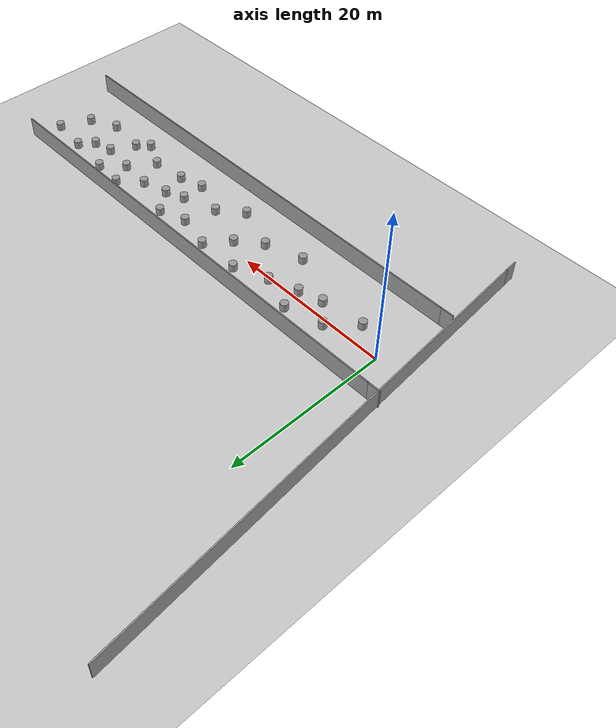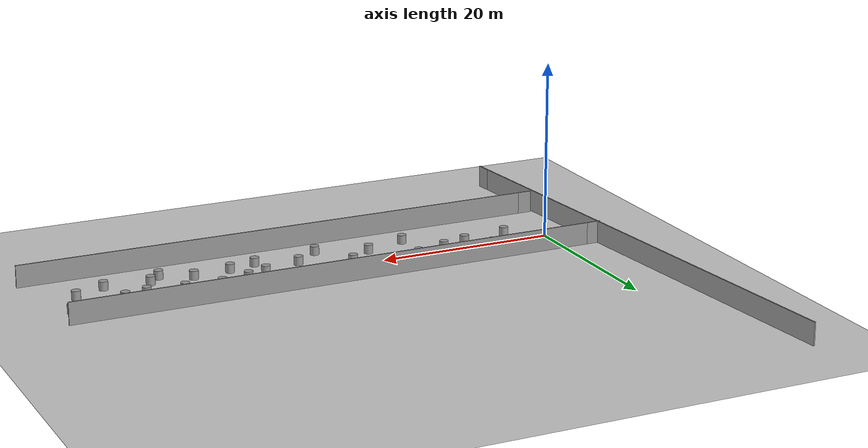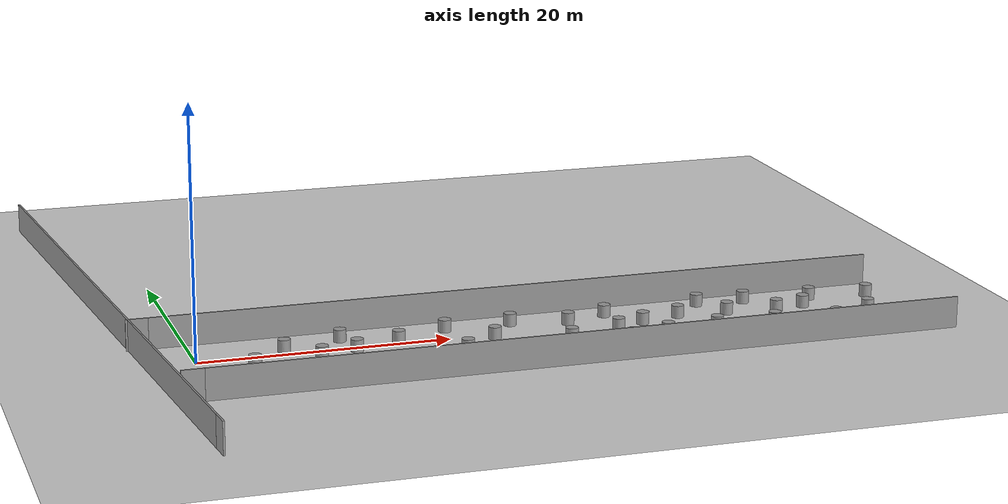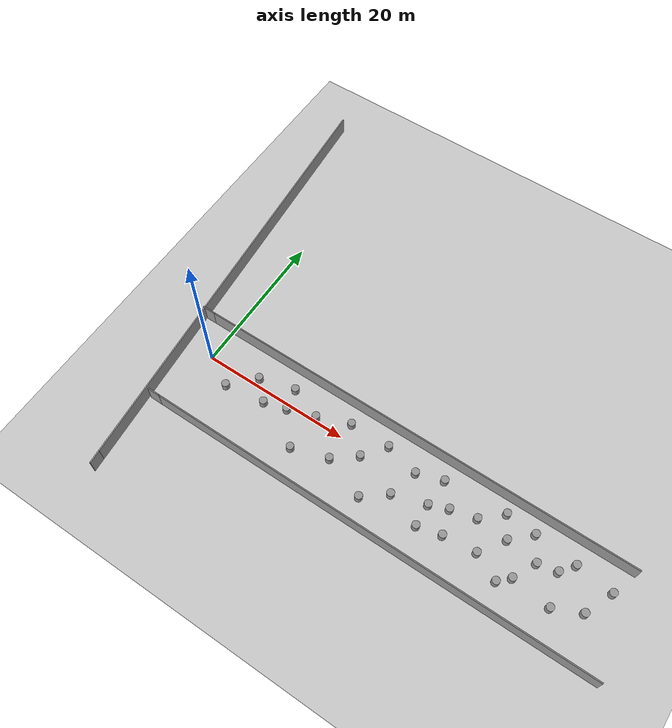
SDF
<sdf version="1.6">
 <world name="default">
  <light name="sun" type="directional">
   <pose>0 0 10 0 -0 0</pose>
   <diffuse>0.8 0.8 0.8 1</diffuse>
   <specular>0.2 0.2 0.2 1</specular>
   <attenuation>
    <range>1000</range>
    <constant>0.9</constant>
    <linear>0.01</linear>
    <quadratic>0.001</quadratic>
   </attenuation>
   <direction>-0.5 0.1 -0.9</direction>
  </light>
  <model name="ground_plane">
   <static>1</static>
   <link name="link">
    <collision name="collision">
     <geometry><plane><normal>0 0 1</normal><size>100 100</size></plane></geometry>
     <surface>
      <contact><collide_bitmask>65535</collide_bitmask></contact>
      <friction><ode><mu>100</mu><mu2>50</mu2></ode></friction>
     </surface>
    </collision>
    <visual name="visual">
     <cast_shadows>0</cast_shadows>
     <geometry><plane><normal>0 0 1</normal><size>100 100</size></plane></geometry>
     <material>
      <script><uri>file://media/materials/scripts/gazebo.material</uri><name>Gazebo/Grey</name></script>
     </material>
    </visual>
   </link>
  </model>
  <gravity>0 0 -9.8</gravity>
  <magnetic_field>6e-06 2.3e-05 -4.2e-05</magnetic_field>
  <atmosphere type="adiabatic"/>
  <physics name="default_physics" default="0" type="ode">
   <max_step_size>0.001</max_step_size>
   <real_time_factor>1</real_time_factor>
   <real_time_update_rate>1000</real_time_update_rate>
  </physics>
  <scene><ambient>0.4 0.4 0.4 1</ambient><background>0.7 0.7 0.7 1</background><shadows>1</shadows></scene>
  <audio><device>default</device></audio>
  <spherical_coordinates>
   <surface_model>EARTH_WGS84</surface_model>
   <latitude_deg>0</latitude_deg>
   <longitude_deg>0</longitude_deg>
   <elevation>0</elevation>
   <heading_deg>0</heading_deg>
  </spherical_coordinates>
  <model name="unit_cylinder">
   <pose>6.99929 0.832206 0.499998 3e-06 -2e-06 0</pose>
   <link name="link">
    <inertial>
     <mass>1</mass>
     <inertia><ixx>0.145833</ixx><ixy>0</ixy><ixz>0</ixz><iyy>0.145833</iyy><iyz>0</iyz><izz>0.125</izz></inertia>
    </inertial>
    <collision name="collision">
     <geometry><cylinder><radius>0.5</radius><length>1</length></cylinder></geometry>
    </collision>
    <visual name="visual">
     <geometry><cylinder><radius>0.5</radius><length>1</length></cylinder></geometry>
     <material>
      <script><name>Gazebo/Grey</name><uri>file://media/materials/scripts/gazebo.material</uri></script>
     </material>
    </visual>
   </link>
  </model>
  <model name="unit_cylinder_0">
   <pose>4.06146 -2.25804 0.499992 -3e-06 2e-06 0</pose>
   <link name="link">
    <inertial>
     <mass>1</mass>
     <inertia><ixx>0.145833</ixx><ixy>0</ixy><ixz>0</ixz><iyy>0.145833</iyy><iyz>0</iyz><izz>0.125</izz></inertia>
    </inertial>
    <collision name="collision">
     <geometry><cylinder><radius>0.5</radius><length>1</length></cylinder></geometry>
    </collision>
    <visual name="visual">
     <geometry><cylinder><radius>0.5</radius><length>1</length></cylinder></geometry>
     <material>
      <script><name>Gazebo/Grey</name><uri>file://media/materials/scripts/gazebo.material</uri></script>
     </material>
    </visual>
   </link>
  </model>
  <model name="unit_cylinder_1">
   <pose>11.6938 2.06939 0.499992 -3e-06 2e-06 0</pose>
   <link name="link">
    <inertial>
     <mass>1</mass>
     <inertia><ixx>0.145833</ixx><ixy>0</ixy><ixz>0</ixz><iyy>0.145833</iyy><iyz>0</iyz><izz>0.125</izz></inertia>
    </inertial>
    <collision name="collision">
     <geometry><cylinder><radius>0.5</radius><length>1</length></cylinder></geometry>
    </collision>
    <visual name="visual">
     <geometry><cylinder><radius>0.5</radius><length>1</length></cylinder></geometry>
     <material>
      <script><name>Gazebo/Grey</name><uri>file://media/materials/scripts/gazebo.material</uri></script>
     </material>
    </visual>
   </link>
  </model>
  <model name="unit_cylinder_2">
   <pose>9.38691 -1.54603 0.499992 -3e-06 2e-06 0</pose>
   <link name="link">
    <inertial>
     <mass>1</mass>
     <inertia><ixx>0.145833</ixx><ixy>0</ixy><ixz>0</ixz><iyy>0.145833</iyy><iyz>0</iyz><izz>0.125</izz></inertia>
    </inertial>
    <collision name="collision">
     <geometry><cylinder><radius>0.5</radius><length>1</length></cylinder></geometry>
    </collision>
    <visual name="visual">
     <geometry><cylinder><radius>0.5</radius><length>1</length></cylinder></geometry>
     <material>
      <script><name>Gazebo/Grey</name><uri>file://media/materials/scripts/gazebo.material</uri></script>
     </material>
    </visual>
   </link>
  </model>
  <model name="unit_cylinder_3">
   <pose>15.6885 -4.63383 0.499992 -3e-06 2e-06 0</pose>
   <link name="link">
    <inertial>
     <mass>1</mass>
     <inertia><ixx>0.145833</ixx><ixy>0</ixy><ixz>0</ixz><iyy>0.145833</iyy><iyz>0</iyz><izz>0.125</izz></inertia>
    </inertial>
    <collision name="collision">
     <geometry><cylinder><radius>0.5</radius><length>1</length></cylinder></geometry>
    </collision>
    <visual name="visual">
     <geometry><cylinder><radius>0.5</radius><length>1</length></cylinder></geometry>
     <material>
      <script><name>Gazebo/Grey</name><uri>file://media/materials/scripts/gazebo.material</uri></script>
     </material>
    </visual>
   </link>
  </model>
  <model name="unit_cylinder_4">
   <pose>15.969 0.43538 0.499992 -3e-06 2e-06 0</pose>
   <link name="link">
    <inertial>
     <mass>1</mass>
     <inertia><ixx>0.145833</ixx><ixy>0</ixy><ixz>0</ixz><iyy>0.145833</iyy><iyz>0</iyz><izz>0.125</izz></inertia>
    </inertial>
    <collision name="collision">
     <geometry><cylinder><radius>0.5</radius><length>1</length></cylinder></geometry>
    </collision>
    <visual name="visual">
     <geometry><cylinder><radius>0.5</radius><length>1</length></cylinder></geometry>
     <material>
      <script><name>Gazebo/Grey</name><uri>file://media/materials/scripts/gazebo.material</uri></script>
     </material>
    </visual>
   </link>
  </model>
  <model name="unit_cylinder_5">
   <pose>20.1456 2.07583 0.499997 3e-06 2e-06 0</pose>
   <link name="link">
    <inertial>
     <mass>1</mass>
     <inertia><ixx>0.145833</ixx><ixy>0</ixy><ixz>0</ixz><iyy>0.145833</iyy><iyz>0</iyz><izz>0.125</izz></inertia>
    </inertial>
    <collision name="collision">
     <geometry><cylinder><radius>0.5</radius><length>1</length></cylinder></geometry>
    </collision>
    <visual name="visual">
     <geometry><cylinder><radius>0.5</radius><length>1</length></cylinder></geometry>
     <material>
      <script><name>Gazebo/Grey</name><uri>file://media/materials/scripts/gazebo.material</uri></script>
     </material>
    </visual>
   </link>
  </model>
  <model name="unit_cylinder_6">
   <pose>20.4307 -3.17791 0.499998 3e-06 -2e-06 0</pose>
   <link name="link">
    <inertial>
     <mass>1</mass>
     <inertia><ixx>0.145833</ixx><ixy>0</ixy><ixz>0</ixz><iyy>0.145833</iyy><iyz>0</iyz><izz>0.125</izz></inertia>
    </inertial>
    <collision name="collision">
     <geometry><cylinder><radius>0.5</radius><length>1</length></cylinder></geometry>
    </collision>
    <visual name="visual">
     <geometry><cylinder><radius>0.5</radius><length>1</length></cylinder></geometry>
     <material>
      <script><name>Gazebo/Grey</name><uri>file://media/materials/scripts/gazebo.material</uri></script>
     </material>
    </visual>
   </link>
  </model>
  <model name="unit_cylinder_7">
   <pose>25.5153 2.11295 0.499998 3e-06 -2e-06 0</pose>
   <link name="link">
    <inertial>
     <mass>1</mass>
     <inertia><ixx>0.145833</ixx><ixy>0</ixy><ixz>0</ixz><iyy>0.145833</iyy><iyz>0</iyz><izz>0.125</izz></inertia>
    </inertial>
    <collision name="collision">
     <geometry><cylinder><radius>0.5</radius><length>1</length></cylinder></geometry>
    </collision>
    <visual name="visual">
     <geometry><cylinder><radius>0.5</radius><length>1</length></cylinder></geometry>
     <material>
      <script><name>Gazebo/Grey</name><uri>file://media/materials/scripts/gazebo.material</uri></script>
     </material>
    </visual>
   </link>
  </model>
  <model name="unit_cylinder_8">
   <pose>26.0064 -5.24581 0.499997 3e-06 2e-06 0</pose>
   <link name="link">
    <inertial>
     <mass>1</mass>
     <inertia><ixx>0.145833</ixx><ixy>0</ixy><ixz>0</ixz><iyy>0.145833</iyy><iyz>0</iyz><izz>0.125</izz></inertia>
    </inertial>
    <collision name="collision">
     <geometry><cylinder><radius>0.5</radius><length>1</length></cylinder></geometry>
    </collision>
    <visual name="visual">
     <geometry><cylinder><radius>0.5</radius><length>1</length></cylinder></geometry>
     <material>
      <script><name>Gazebo/Grey</name><uri>file://media/materials/scripts/gazebo.material</uri></script>
     </material>
    </visual>
   </link>
  </model>
  <model name="wall_up02">
   <pose>26.3188 4.46212 0 0 -0 0</pose>
   <link name="Wall_0">
    <collision name="Wall_0_Collision">
     <geometry><box><size>60 0.15 2.5</size></box></geometry>
     <pose>0 0 1.25 0 -0 0</pose>
    </collision>
    <visual name="Wall_0_Visual">
     <pose>0 0 1.25 0 -0 0</pose>
     <geometry><box><size>60 0.15 2.5</size></box></geometry>
     <material>
      <script><uri>file://media/materials/scripts/gazebo.material</uri><name>Gazebo/Grey</name></script>
      <ambient>1 1 1 1</ambient>
     </material>
     <meta><layer>0</layer></meta>
    </visual>
    <pose>0.799999 0 0 0 -0 3.14159</pose>
   </link>
   <link name="Wall_1">
    <collision name="Wall_1_Collision">
     <geometry><box><size>1.75 0.15 2.5</size></box></geometry>
     <pose>0 0 1.25 0 -0 0</pose>
    </collision>
    <visual name="Wall_1_Visual">
     <pose>0 0 1.25 0 -0 0</pose>
     <geometry><box><size>1.75 0.15 2.5</size></box></geometry>
     <material>
      <script><uri>file://media/materials/scripts/gazebo.material</uri><name>Gazebo/Grey</name></script>
      <ambient>0 0 0 1</ambient>
     </material>
     <meta><layer>0</layer></meta>
    </visual>
    <pose>-29.925 0 0 0 -0 3.14159</pose>
   </link>
   <static>1</static>
  </model>
  <model name="wall_up02_clone">
   <pose>28.0229 -8.63842 0 0 -0 0</pose>
   <link name="Wall_0">
    <collision name="Wall_0_Collision">
     <geometry><box><size>60 0.15 2.5</size></box></geometry>
     <pose>0 0 1.25 0 -0 0</pose>
    </collision>
    <visual name="Wall_0_Visual">
     <pose>0 0 1.25 0 -0 0</pose>
     <geometry><box><size>60 0.15 2.5</size></box></geometry>
     <material>
      <script><uri>file://media/materials/scripts/gazebo.material</uri><name>Gazebo/Grey</name></script>
      <ambient>1 1 1 1</ambient>
     </material>
     <meta><layer>0</layer></meta>
    </visual>
    <pose>0.799999 0 0 0 -0 3.14159</pose>
   </link>
   <link name="Wall_1">
    <collision name="Wall_1_Collision">
     <geometry><box><size>1.75 0.15 2.5</size></box></geometry>
     <pose>0 0 1.25 0 -0 0</pose>
    </collision>
    <visual name="Wall_1_Visual">
     <pose>0 0 1.25 0 -0 0</pose>
     <geometry><box><size>1.75 0.15 2.5</size></box></geometry>
     <material>
      <script><uri>file://media/materials/scripts/gazebo.material</uri><name>Gazebo/Grey</name></script>
      <ambient>0 0 0 1</ambient>
     </material>
     <meta><layer>0</layer></meta>
    </visual>
    <pose>-29.925 0 0 0 -0 3.14159</pose>
   </link>
   <static>1</static>
  </model>
  <model name="wall_up02_clone_0">
   <pose>-4.8199 10.6285 0 0 -0 1.65999</pose>
   <link name="Wall_0">
    <collision name="Wall_0_Collision">
     <geometry><box><size>60 0.15 2.5</size></box></geometry>
     <pose>0 0 1.25 0 -0 0</pose>
    </collision>
    <visual name="Wall_0_Visual">
     <pose>0 0 1.25 0 -0 0</pose>
     <geometry><box><size>60 0.15 2.5</size></box></geometry>
     <material>
      <script><uri>file://media/materials/scripts/gazebo.material</uri><name>Gazebo/Grey</name></script>
      <ambient>1 1 1 1</ambient>
     </material>
     <meta><layer>0</layer></meta>
    </visual>
    <pose>0.799999 0 0 0 -0 3.14159</pose>
   </link>
   <link name="Wall_1">
    <collision name="Wall_1_Collision">
     <geometry><box><size>1.75 0.15 2.5</size></box></geometry>
     <pose>0 0 1.25 0 -0 0</pose>
    </collision>
    <visual name="Wall_1_Visual">
     <pose>0 0 1.25 0 -0 0</pose>
     <geometry><box><size>1.75 0.15 2.5</size></box></geometry>
     <material>
      <script><uri>file://media/materials/scripts/gazebo.material</uri><name>Gazebo/Grey</name></script>
      <ambient>0 0 0 1</ambient>
     </material>
     <meta><layer>0</layer></meta>
    </visual>
    <pose>-29.925 0 0 0 -0 3.14159</pose>
   </link>
   <static>1</static>
  </model>
  <model name="unit_cylinder_9">
   <pose>29.9752 1.02368 0.499998 3e-06 -3e-06 0</pose>
   <link name="link">
    <inertial>
     <mass>1</mass>
     <inertia><ixx>0.145833</ixx><ixy>0</ixy><ixz>0</ixz><iyy>0.145833</iyy><iyz>0</iyz><izz>0.125</izz></inertia>
    </inertial>
    <collision name="collision">
     <geometry><cylinder><radius>0.5</radius><length>1</length></cylinder></geometry>
    </collision>
    <visual name="visual">
     <geometry><cylinder><radius>0.5</radius><length>1</length></cylinder></geometry>
     <material>
      <script><name>Gazebo/Grey</name><uri>file://media/materials/scripts/gazebo.material</uri></script>
     </material>
    </visual>
   </link>
  </model>
  <model name="unit_cylinder_10">
   <pose>28.9403 -2.84074 0.499992 -3e-06 3e-06 0</pose>
   <link name="link">
    <inertial>
     <mass>1</mass>
     <inertia><ixx>0.145833</ixx><ixy>0</ixy><ixz>0</ixz><iyy>0.145833</iyy><iyz>0</iyz><izz>0.125</izz></inertia>
    </inertial>
    <collision name="collision">
     <geometry><cylinder><radius>0.5</radius><length>1</length></cylinder></geometry>
    </collision>
    <visual name="visual">
     <geometry><cylinder><radius>0.5</radius><length>1</length></cylinder></geometry>
     <material>
      <script><name>Gazebo/Grey</name><uri>file://media/materials/scripts/gazebo.material</uri></script>
     </material>
    </visual>
   </link>
  </model>
  <model name="unit_cylinder_11">
   <pose>38.9306 0.249724 0.499992 -3e-06 3e-06 0</pose>
   <link name="link">
    <inertial>
     <mass>1</mass>
     <inertia><ixx>0.145833</ixx><ixy>0</ixy><ixz>0</ixz><iyy>0.145833</iyy><iyz>0</iyz><izz>0.125</izz></inertia>
    </inertial>
    <collision name="collision">
     <geometry><cylinder><radius>0.5</radius><length>1</length></cylinder></geometry>
    </collision>
    <visual name="visual">
     <geometry><cylinder><radius>0.5</radius><length>1</length></cylinder></geometry>
     <material>
      <script><name>Gazebo/Grey</name><uri>file://media/materials/scripts/gazebo.material</uri></script>
     </material>
    </visual>
   </link>
  </model>
  <model name="unit_cylinder_12">
   <pose>23.3283 -0.82513 0.499998 3e-06 -3e-06 0</pose>
   <link name="link">
    <inertial>
     <mass>1</mass>
     <inertia><ixx>0.145833</ixx><ixy>0</ixy><ixz>0</ixz><iyy>0.145833</iyy><iyz>0</iyz><izz>0.125</izz></inertia>
    </inertial>
    <collision name="collision">
     <geometry><cylinder><radius>0.5</radius><length>1</length></cylinder></geometry>
    </collision>
    <visual name="visual">
     <geometry><cylinder><radius>0.5</radius><length>1</length></cylinder></geometry>
     <material>
      <script><name>Gazebo/Grey</name><uri>file://media/materials/scripts/gazebo.material</uri></script>
     </material>
    </visual>
   </link>
  </model>
  <model name="unit_cylinder_13">
   <pose>12.3468 -0.723971 0.499992 -3e-06 4e-06 0</pose>
   <link name="link">
    <inertial>
     <mass>1</mass>
     <inertia><ixx>0.145833</ixx><ixy>0</ixy><ixz>0</ixz><iyy>0.145833</iyy><iyz>0</iyz><izz>0.125</izz></inertia>
    </inertial>
    <collision name="collision">
     <geometry><cylinder><radius>0.5</radius><length>1</length></cylinder></geometry>
    </collision>
    <visual name="visual">
     <geometry><cylinder><radius>0.5</radius><length>1</length></cylinder></geometry>
     <material>
      <script><name>Gazebo/Grey</name><uri>file://media/materials/scripts/gazebo.material</uri></script>
     </material>
    </visual>
   </link>
  </model>
  <model name="unit_cylinder_14">
   <pose>33.4337 -4.49053 0.499992 -3e-06 4e-06 0</pose>
   <link name="link">
    <inertial>
     <mass>1</mass>
     <inertia><ixx>0.145833</ixx><ixy>0</ixy><ixz>0</ixz><iyy>0.145833</iyy><iyz>0</iyz><izz>0.125</izz></inertia>
    </inertial>
    <collision name="collision">
     <geometry><cylinder><radius>0.5</radius><length>1</length></cylinder></geometry>
    </collision>
    <visual name="visual">
     <geometry><cylinder><radius>0.5</radius><length>1</length></cylinder></geometry>
     <material>
      <script><name>Gazebo/Grey</name><uri>file://media/materials/scripts/gazebo.material</uri></script>
     </material>
    </visual>
   </link>
  </model>
  <model name="unit_cylinder_15">
   <pose>33.2811 -1.5191 0.499992 -3e-06 4e-06 0</pose>
   <link name="link">
    <inertial>
     <mass>1</mass>
     <inertia><ixx>0.145833</ixx><ixy>0</ixy><ixz>0</ixz><iyy>0.145833</iyy><iyz>0</iyz><izz>0.125</izz></inertia>
    </inertial>
    <collision name="collision">
     <geometry><cylinder><radius>0.5</radius><length>1</length></cylinder></geometry>
    </collision>
    <visual name="visual">
     <geometry><cylinder><radius>0.5</radius><length>1</length></cylinder></geometry>
     <material>
      <script><name>Gazebo/Grey</name><uri>file://media/materials/scripts/gazebo.material</uri></script>
     </material>
    </visual>
   </link>
  </model>
  <model name="unit_cylinder_16">
   <pose>33.3825 2.12177 0.499998 3e-06 -4e-06 0</pose>
   <link name="link">
    <inertial>
     <mass>1</mass>
     <inertia><ixx>0.145833</ixx><ixy>0</ixy><ixz>0</ixz><iyy>0.145833</iyy><iyz>0</iyz><izz>0.125</izz></inertia>
    </inertial>
    <collision name="collision">
     <geometry><cylinder><radius>0.5</radius><length>1</length></cylinder></geometry>
    </collision>
    <visual name="visual">
     <geometry><cylinder><radius>0.5</radius><length>1</length></cylinder></geometry>
     <material>
      <script><name>Gazebo/Grey</name><uri>file://media/materials/scripts/gazebo.material</uri></script>
     </material>
    </visual>
   </link>
  </model>
  <model name="unit_cylinder_17">
   <pose>35.6441 -0.588373 0.499998 3e-06 -4e-06 0</pose>
   <link name="link">
    <inertial>
     <mass>1</mass>
     <inertia><ixx>0.145833</ixx><ixy>0</ixy><ixz>0</ixz><iyy>0.145833</iyy><iyz>0</iyz><izz>0.125</izz></inertia>
    </inertial>
    <collision name="collision">
     <geometry><cylinder><radius>0.5</radius><length>1</length></cylinder></geometry>
    </collision>
    <visual name="visual">
     <geometry><cylinder><radius>0.5</radius><length>1</length></cylinder></geometry>
     <material>
      <script><name>Gazebo/Grey</name><uri>file://media/materials/scripts/gazebo.material</uri></script>
     </material>
    </visual>
   </link>
  </model>
  <model name="unit_cylinder_18">
   <pose>40.8577 -3.2866 0.499992 -3e-06 4e-06 0</pose>
   <link name="link">
    <inertial>
     <mass>1</mass>
     <inertia><ixx>0.145833</ixx><ixy>0</ixy><ixz>0</ixz><iyy>0.145833</iyy><iyz>0</iyz><izz>0.125</izz></inertia>
    </inertial>
    <collision name="collision">
     <geometry><cylinder><radius>0.5</radius><length>1</length></cylinder></geometry>
    </collision>
    <visual name="visual">
     <geometry><cylinder><radius>0.5</radius><length>1</length></cylinder></geometry>
     <material>
      <script><name>Gazebo/Grey</name><uri>file://media/materials/scripts/gazebo.material</uri></script>
     </material>
    </visual>
   </link>
  </model>
  <model name="unit_cylinder_19">
   <pose>41.4999 2.67103 0.499992 -3e-06 4e-06 0</pose>
   <link name="link">
    <inertial>
     <mass>1</mass>
     <inertia><ixx>0.145833</ixx><ixy>0</ixy><ixz>0</ixz><iyy>0.145833</iyy><iyz>0</iyz><izz>0.125</izz></inertia>
    </inertial>
    <collision name="collision">
     <geometry><cylinder><radius>0.5</radius><length>1</length></cylinder></geometry>
    </collision>
    <visual name="visual">
     <geometry><cylinder><radius>0.5</radius><length>1</length></cylinder></geometry>
     <material>
      <script><name>Gazebo/Grey</name><uri>file://media/materials/scripts/gazebo.material</uri></script>
     </material>
    </visual>
   </link>
  </model>
  <model name="unit_cylinder_20">
   <pose>42.9995 -0.081271 0.499998 3e-06 4e-06 -0</pose>
   <link name="link">
    <inertial>
     <mass>1</mass>
     <inertia><ixx>0.145833</ixx><ixy>0</ixy><ixz>0</ixz><iyy>0.145833</iyy><iyz>0</iyz><izz>0.125</izz></inertia>
    </inertial>
    <collision name="collision">
     <geometry><cylinder><radius>0.5</radius><length>1</length></cylinder></geometry>
    </collision>
    <visual name="visual">
     <geometry><cylinder><radius>0.5</radius><length>1</length></cylinder></geometry>
     <material>
      <script><name>Gazebo/Grey</name><uri>file://media/materials/scripts/gazebo.material</uri></script>
     </material>
    </visual>
   </link>
  </model>
  <model name="unit_cylinder_21">
   <pose>36.5585 -3.73062 0.499998 3e-06 4e-06 -0</pose>
   <link name="link">
    <inertial>
     <mass>1</mass>
     <inertia><ixx>0.145833</ixx><ixy>0</ixy><ixz>0</ixz><iyy>0.145833</iyy><iyz>0</iyz><izz>0.125</izz></inertia>
    </inertial>
    <collision name="collision">
     <geometry><cylinder><radius>0.5</radius><length>1</length></cylinder></geometry>
    </collision>
    <visual name="visual">
     <geometry><cylinder><radius>0.5</radius><length>1</length></cylinder></geometry>
     <material>
      <script><name>Gazebo/Grey</name><uri>file://media/materials/scripts/gazebo.material</uri></script>
     </material>
    </visual>
   </link>
  </model>
  <model name="unit_cylinder_22">
   <pose>44.2549 -4.96705 0.499997 3e-06 3e-06 0</pose>
   <link name="link">
    <inertial>
     <mass>1</mass>
     <inertia><ixx>0.145833</ixx><ixy>0</ixy><ixz>0</ixz><iyy>0.145833</iyy><iyz>0</iyz><izz>0.125</izz></inertia>
    </inertial>
    <collision name="collision">
     <geometry><cylinder><radius>0.5</radius><length>1</length></cylinder></geometry>
    </collision>
    <visual name="visual">
     <geometry><cylinder><radius>0.5</radius><length>1</length></cylinder></geometry>
     <material>
      <script><name>Gazebo/Grey</name><uri>file://media/materials/scripts/gazebo.material</uri></script>
     </material>
    </visual>
   </link>
  </model>
  <model name="unit_cylinder_23">
   <pose>47.0887 -0.585002 0.499997 3e-06 4e-06 -0</pose>
   <link name="link">
    <inertial>
     <mass>1</mass>
     <inertia><ixx>0.145833</ixx><ixy>0</ixy><ixz>0</ixz><iyy>0.145833</iyy><iyz>0</iyz><izz>0.125</izz></inertia>
    </inertial>
    <collision name="collision">
     <geometry><cylinder><radius>0.5</radius><length>1</length></cylinder></geometry>
    </collision>
    <visual name="visual">
     <geometry><cylinder><radius>0.5</radius><length>1</length></cylinder></geometry>
     <material>
      <script><name>Gazebo/Grey</name><uri>file://media/materials/scripts/gazebo.material</uri></script>
     </material>
    </visual>
   </link>
  </model>
  <model name="unit_cylinder_24">
   <pose>45.6178 -3.59792 0.499993 -3e-06 -4e-06 -0</pose>
   <link name="link">
    <inertial>
     <mass>1</mass>
     <inertia><ixx>0.145833</ixx><ixy>0</ixy><ixz>0</ixz><iyy>0.145833</iyy><iyz>0</iyz><izz>0.125</izz></inertia>
    </inertial>
    <collision name="collision">
     <geometry><cylinder><radius>0.5</radius><length>1</length></cylinder></geometry>
    </collision>
    <visual name="visual">
     <geometry><cylinder><radius>0.5</radius><length>1</length></cylinder></geometry>
     <material>
      <script><name>Gazebo/Grey</name><uri>file://media/materials/scripts/gazebo.material</uri></script>
     </material>
    </visual>
   </link>
  </model>
  <model name="unit_cylinder_25">
   <pose>45.4222 2.34595 0.499993 -3e-06 -4e-06 -0</pose>
   <link name="link">
    <inertial>
     <mass>1</mass>
     <inertia><ixx>0.145833</ixx><ixy>0</ixy><ixz>0</ixz><iyy>0.145833</iyy><iyz>0</iyz><izz>0.125</izz></inertia>
    </inertial>
    <collision name="collision">
     <geometry><cylinder><radius>0.5</radius><length>1</length></cylinder></geometry>
    </collision>
    <visual name="visual">
     <geometry><cylinder><radius>0.5</radius><length>1</length></cylinder></geometry>
     <material>
      <script><name>Gazebo/Grey</name><uri>file://media/materials/scripts/gazebo.material</uri></script>
     </material>
    </visual>
   </link>
  </model>
  <model name="unit_cylinder_26">
   <pose>50.9526 1.73898 0.499993 -3e-06 -4e-06 -0</pose>
   <link name="link">
    <inertial>
     <mass>1</mass>
     <inertia><ixx>0.145833</ixx><ixy>0</ixy><ixz>0</ixz><iyy>0.145833</iyy><iyz>0</iyz><izz>0.125</izz></inertia>
    </inertial>
    <collision name="collision">
     <geometry><cylinder><radius>0.5</radius><length>1</length></cylinder></geometry>
    </collision>
    <visual name="visual">
     <geometry><cylinder><radius>0.5</radius><length>1</length></cylinder></geometry>
     <material>
      <script><name>Gazebo/Grey</name><uri>file://media/materials/scripts/gazebo.material</uri></script>
     </material>
    </visual>
   </link>
  </model>
  <model name="unit_cylinder_27">
   <pose>50.6528 -4.19308 0.499993 -3e-06 -4e-06 -0</pose>
   <link name="link">
    <inertial>
     <mass>1</mass>
     <inertia><ixx>0.145833</ixx><ixy>0</ixy><ixz>0</ixz><iyy>0.145833</iyy><iyz>0</iyz><izz>0.125</izz></inertia>
    </inertial>
    <collision name="collision">
     <geometry><cylinder><radius>0.5</radius><length>1</length></cylinder></geometry>
    </collision>
    <visual name="visual">
     <geometry><cylinder><radius>0.5</radius><length>1</length></cylinder></geometry>
     <material>
      <script><name>Gazebo/Grey</name><uri>file://media/materials/scripts/gazebo.material</uri></script>
     </material>
    </visual>
   </link>
  </model>
  <model name="unit_cylinder_28">
   <pose>49.6096 -0.069509 0.499997 3e-06 4e-06 -0</pose>
   <link name="link">
    <inertial>
     <mass>1</mass>
     <inertia><ixx>0.145833</ixx><ixy>0</ixy><ixz>0</ixz><iyy>0.145833</iyy><iyz>0</iyz><izz>0.125</izz></inertia>
    </inertial>
    <collision name="collision">
     <geometry><cylinder><radius>0.5</radius><length>1</length></cylinder></geometry>
    </collision>
    <visual name="visual">
     <geometry><cylinder><radius>0.5</radius><length>1</length></cylinder></geometry>
     <material>
      <script><name>Gazebo/Grey</name><uri>file://media/materials/scripts/gazebo.material</uri></script>
     </material>
    </visual>
   </link>
  </model>
  <model name="unit_cylinder_29">
   <pose>55.7679 1.16425 0.499993 -3e-06 -4e-06 -0</pose>
   <link name="link">
    <inertial>
     <mass>1</mass>
     <inertia><ixx>0.145833</ixx><ixy>0</ixy><ixz>0</ixz><iyy>0.145833</iyy><iyz>0</iyz><izz>0.125</izz></inertia>
    </inertial>
    <collision name="collision">
     <geometry><cylinder><radius>0.5</radius><length>1</length></cylinder></geometry>
    </collision>
    <visual name="visual">
     <geometry><cylinder><radius>0.5</radius><length>1</length></cylinder></geometry>
     <material>
      <script><name>Gazebo/Grey</name><uri>file://media/materials/scripts/gazebo.material</uri></script>
     </material>
    </visual>
   </link>
  </model>
  <model name="unit_cylinder_30">
   <pose>54.1497 -2.57741 0.499997 3e-06 4e-06 -0</pose>
   <link name="link">
    <inertial>
     <mass>1</mass>
     <inertia><ixx>0.145833</ixx><ixy>0</ixy><ixz>0</ixz><iyy>0.145833</iyy><iyz>0</iyz><izz>0.125</izz></inertia>
    </inertial>
    <collision name="collision">
     <geometry><cylinder><radius>0.5</radius><length>1</length></cylinder></geometry>
    </collision>
    <visual name="visual">
     <geometry><cylinder><radius>0.5</radius><length>1</length></cylinder></geometry>
     <material>
      <script><name>Gazebo/Grey</name><uri>file://media/materials/scripts/gazebo.material</uri></script>
     </material>
    </visual>
   </link>
  </model>
 </world>
</sdf>
